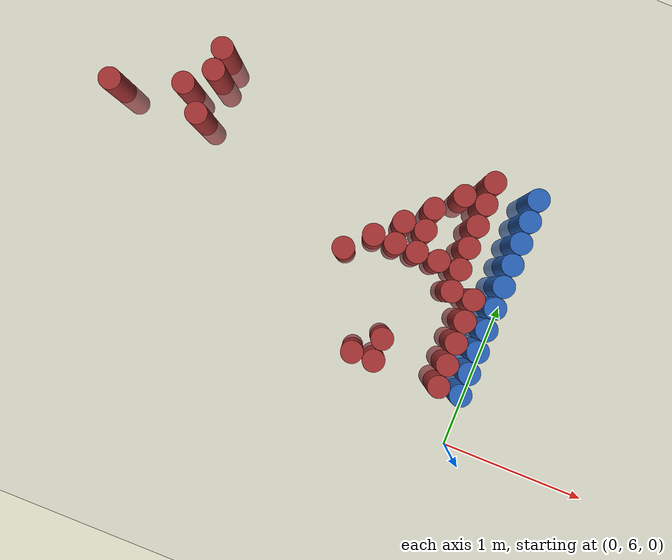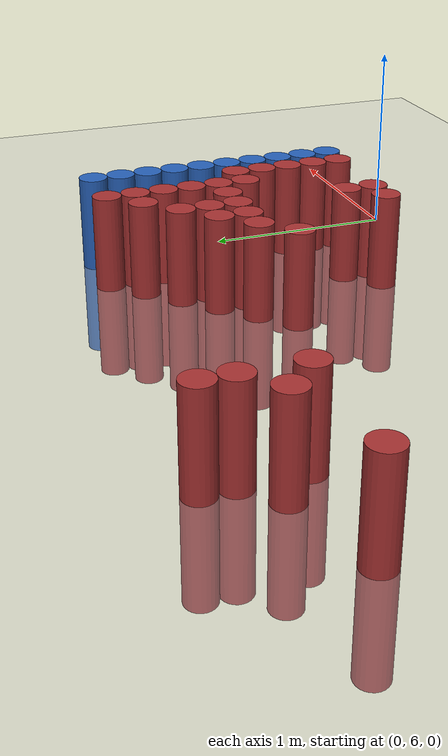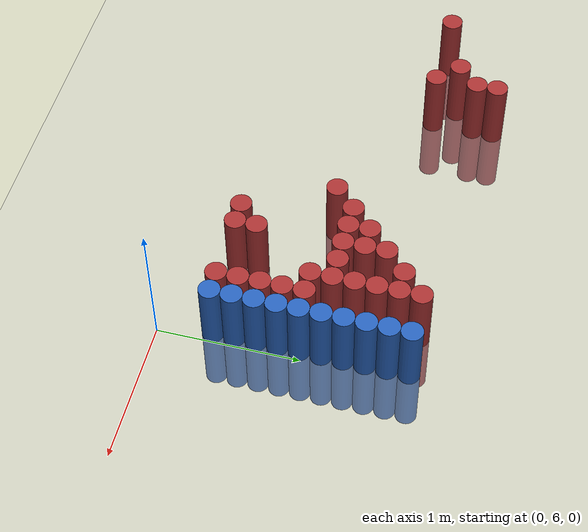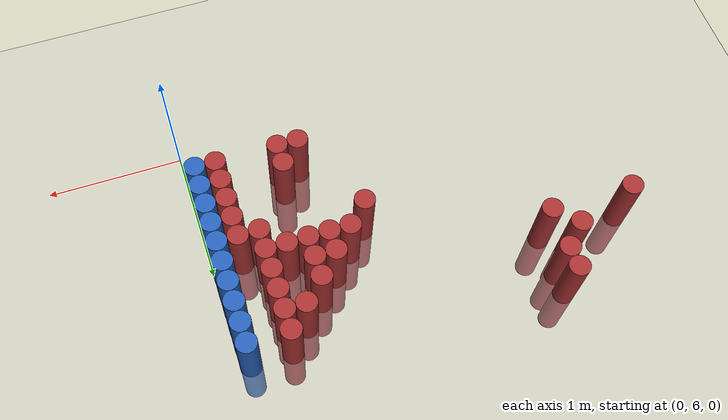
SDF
<sdf version="1.6">
 <world name="default">
  <model name="ground_plane">
   <static>1</static>
   <link name="link">
    <collision name="collision">
     <geometry><plane><normal>0 0 1</normal><size>100 100</size></plane></geometry>
     <surface><friction><ode><mu>100</mu><mu2>50</mu2></ode></friction></surface>
    </collision>
    <visual name="visual">
     <cast_shadows>0</cast_shadows>
     <geometry><plane><normal>0 0 1</normal><size>100 100</size></plane></geometry>
     <material>
      <script><uri>file://media/materials/scripts/gazebo.material</uri><name>Gazebo/Grey</name></script>
     </material>
    </visual>
   </link>
  </model>
  <model name="unit_cylinder_198">
   <static>1</static>
   <pose>-2.925000 7.425000 0.000000 0.000000 0.000000 0.000000</pose>
   <link name="link">
    <inertial>
     <mass>1</mass>
     <inertia><ixx>0.145833</ixx><ixy>0</ixy><ixz>0</ixz><iyy>0.145833</iyy><iyz>0</iyz><izz>0.125</izz></inertia>
    </inertial>
    <collision name="collision">
     <geometry><cylinder><radius>0.075000</radius><length>1</length></cylinder></geometry>
    </collision>
    <visual name="visual">
     <geometry><cylinder><radius>0.075000</radius><length>1</length></cylinder></geometry>
     <material>
      <ambient>0.648000 0.192000 0.192000 1</ambient>
      <diffuse>0.648000 0.192000 0.192000 1</diffuse>
     </material>
     <material>
      <script><name>Gazebo/Grey</name><uri>file://media/materials/scripts/gazebo.material</uri></script>
     </material>
    </visual>
    <sensor name="sensor_contact" type="contact"><contact><collision>collision</collision></contact></sensor>
   </link>
   <plugin filename="gz-sim-touchplugin-system" name="gz::sim::systems::TouchPlugin">
    <target>robot</target>
    <namespace>robot</namespace>
    <time>0.001</time>
    <enabled>true</enabled>
   </plugin>
  </model>
  <model name="unit_cylinder_220">
   <static>1</static>
   <pose>-2.475000 7.575000 0.000000 0.000000 0.000000 0.000000</pose>
   <link name="link">
    <inertial>
     <mass>1</mass>
     <inertia><ixx>0.145833</ixx><ixy>0</ixy><ixz>0</ixz><iyy>0.145833</iyy><iyz>0</iyz><izz>0.125</izz></inertia>
    </inertial>
    <collision name="collision">
     <geometry><cylinder><radius>0.075000</radius><length>1</length></cylinder></geometry>
    </collision>
    <visual name="visual">
     <geometry><cylinder><radius>0.075000</radius><length>1</length></cylinder></geometry>
     <material>
      <ambient>0.648000 0.192000 0.192000 1</ambient>
      <diffuse>0.648000 0.192000 0.192000 1</diffuse>
     </material>
     <material>
      <script><name>Gazebo/Grey</name><uri>file://media/materials/scripts/gazebo.material</uri></script>
     </material>
    </visual>
    <sensor name="sensor_contact" type="contact"><contact><collision>collision</collision></contact></sensor>
   </link>
   <plugin filename="gz-sim-touchplugin-system" name="gz::sim::systems::TouchPlugin">
    <target>robot</target>
    <namespace>robot</namespace>
    <time>0.001</time>
    <enabled>true</enabled>
   </plugin>
  </model>
  <model name="unit_cylinder_228">
   <static>1</static>
   <pose>-2.325000 7.425000 0.000000 0.000000 0.000000 0.000000</pose>
   <link name="link">
    <inertial>
     <mass>1</mass>
     <inertia><ixx>0.145833</ixx><ixy>0</ixy><ixz>0</ixz><iyy>0.145833</iyy><iyz>0</iyz><izz>0.125</izz></inertia>
    </inertial>
    <collision name="collision">
     <geometry><cylinder><radius>0.075000</radius><length>1</length></cylinder></geometry>
    </collision>
    <visual name="visual">
     <geometry><cylinder><radius>0.075000</radius><length>1</length></cylinder></geometry>
     <material>
      <ambient>0.648000 0.192000 0.192000 1</ambient>
      <diffuse>0.648000 0.192000 0.192000 1</diffuse>
     </material>
     <material>
      <script><name>Gazebo/Grey</name><uri>file://media/materials/scripts/gazebo.material</uri></script>
     </material>
    </visual>
    <sensor name="sensor_contact" type="contact"><contact><collision>collision</collision></contact></sensor>
   </link>
   <plugin filename="gz-sim-touchplugin-system" name="gz::sim::systems::TouchPlugin">
    <target>robot</target>
    <namespace>robot</namespace>
    <time>0.001</time>
    <enabled>true</enabled>
   </plugin>
  </model>
  <model name="unit_cylinder_229">
   <static>1</static>
   <pose>-2.325000 7.725000 0.000000 0.000000 0.000000 0.000000</pose>
   <link name="link">
    <inertial>
     <mass>1</mass>
     <inertia><ixx>0.145833</ixx><ixy>0</ixy><ixz>0</ixz><iyy>0.145833</iyy><iyz>0</iyz><izz>0.125</izz></inertia>
    </inertial>
    <collision name="collision">
     <geometry><cylinder><radius>0.075000</radius><length>1</length></cylinder></geometry>
    </collision>
    <visual name="visual">
     <geometry><cylinder><radius>0.075000</radius><length>1</length></cylinder></geometry>
     <material>
      <ambient>0.648000 0.192000 0.192000 1</ambient>
      <diffuse>0.648000 0.192000 0.192000 1</diffuse>
     </material>
     <material>
      <script><name>Gazebo/Grey</name><uri>file://media/materials/scripts/gazebo.material</uri></script>
     </material>
    </visual>
    <sensor name="sensor_contact" type="contact"><contact><collision>collision</collision></contact></sensor>
   </link>
   <plugin filename="gz-sim-touchplugin-system" name="gz::sim::systems::TouchPlugin">
    <target>robot</target>
    <namespace>robot</namespace>
    <time>0.001</time>
    <enabled>true</enabled>
   </plugin>
  </model>
  <model name="unit_cylinder_230">
   <static>1</static>
   <pose>-2.325000 7.875000 0.000000 0.000000 0.000000 0.000000</pose>
   <link name="link">
    <inertial>
     <mass>1</mass>
     <inertia><ixx>0.145833</ixx><ixy>0</ixy><ixz>0</ixz><iyy>0.145833</iyy><iyz>0</iyz><izz>0.125</izz></inertia>
    </inertial>
    <collision name="collision">
     <geometry><cylinder><radius>0.075000</radius><length>1</length></cylinder></geometry>
    </collision>
    <visual name="visual">
     <geometry><cylinder><radius>0.075000</radius><length>1</length></cylinder></geometry>
     <material>
      <ambient>0.648000 0.192000 0.192000 1</ambient>
      <diffuse>0.648000 0.192000 0.192000 1</diffuse>
     </material>
     <material>
      <script><name>Gazebo/Grey</name><uri>file://media/materials/scripts/gazebo.material</uri></script>
     </material>
    </visual>
    <sensor name="sensor_contact" type="contact"><contact><collision>collision</collision></contact></sensor>
   </link>
   <plugin filename="gz-sim-touchplugin-system" name="gz::sim::systems::TouchPlugin">
    <target>robot</target>
    <namespace>robot</namespace>
    <time>0.001</time>
    <enabled>true</enabled>
   </plugin>
  </model>
  <model name="unit_cylinder_263">
   <static>1</static>
   <pose>-1.125000 6.975000 0.000000 0.000000 0.000000 0.000000</pose>
   <link name="link">
    <inertial>
     <mass>1</mass>
     <inertia><ixx>0.145833</ixx><ixy>0</ixy><ixz>0</ixz><iyy>0.145833</iyy><iyz>0</iyz><izz>0.125</izz></inertia>
    </inertial>
    <collision name="collision">
     <geometry><cylinder><radius>0.075000</radius><length>1</length></cylinder></geometry>
    </collision>
    <visual name="visual">
     <geometry><cylinder><radius>0.075000</radius><length>1</length></cylinder></geometry>
     <material>
      <ambient>0.648000 0.192000 0.192000 1</ambient>
      <diffuse>0.648000 0.192000 0.192000 1</diffuse>
     </material>
     <material>
      <script><name>Gazebo/Grey</name><uri>file://media/materials/scripts/gazebo.material</uri></script>
     </material>
    </visual>
    <sensor name="sensor_contact" type="contact"><contact><collision>collision</collision></contact></sensor>
   </link>
   <plugin filename="gz-sim-touchplugin-system" name="gz::sim::systems::TouchPlugin">
    <target>robot</target>
    <namespace>robot</namespace>
    <time>0.001</time>
    <enabled>true</enabled>
   </plugin>
  </model>
  <model name="unit_cylinder_267">
   <static>1</static>
   <pose>-0.975000 7.125000 0.000000 0.000000 0.000000 0.000000</pose>
   <link name="link">
    <inertial>
     <mass>1</mass>
     <inertia><ixx>0.145833</ixx><ixy>0</ixy><ixz>0</ixz><iyy>0.145833</iyy><iyz>0</iyz><izz>0.125</izz></inertia>
    </inertial>
    <collision name="collision">
     <geometry><cylinder><radius>0.075000</radius><length>1</length></cylinder></geometry>
    </collision>
    <visual name="visual">
     <geometry><cylinder><radius>0.075000</radius><length>1</length></cylinder></geometry>
     <material>
      <ambient>0.648000 0.192000 0.192000 1</ambient>
      <diffuse>0.648000 0.192000 0.192000 1</diffuse>
     </material>
     <material>
      <script><name>Gazebo/Grey</name><uri>file://media/materials/scripts/gazebo.material</uri></script>
     </material>
    </visual>
    <sensor name="sensor_contact" type="contact"><contact><collision>collision</collision></contact></sensor>
   </link>
   <plugin filename="gz-sim-touchplugin-system" name="gz::sim::systems::TouchPlugin">
    <target>robot</target>
    <namespace>robot</namespace>
    <time>0.001</time>
    <enabled>true</enabled>
   </plugin>
  </model>
  <model name="unit_cylinder_270">
   <static>1</static>
   <pose>-0.825000 6.375000 0.000000 0.000000 0.000000 0.000000</pose>
   <link name="link">
    <inertial>
     <mass>1</mass>
     <inertia><ixx>0.145833</ixx><ixy>0</ixy><ixz>0</ixz><iyy>0.145833</iyy><iyz>0</iyz><izz>0.125</izz></inertia>
    </inertial>
    <collision name="collision">
     <geometry><cylinder><radius>0.075000</radius><length>1</length></cylinder></geometry>
    </collision>
    <visual name="visual">
     <geometry><cylinder><radius>0.075000</radius><length>1</length></cylinder></geometry>
     <material>
      <ambient>0.648000 0.192000 0.192000 1</ambient>
      <diffuse>0.648000 0.192000 0.192000 1</diffuse>
     </material>
     <material>
      <script><name>Gazebo/Grey</name><uri>file://media/materials/scripts/gazebo.material</uri></script>
     </material>
    </visual>
    <sensor name="sensor_contact" type="contact"><contact><collision>collision</collision></contact></sensor>
   </link>
   <plugin filename="gz-sim-touchplugin-system" name="gz::sim::systems::TouchPlugin">
    <target>robot</target>
    <namespace>robot</namespace>
    <time>0.001</time>
    <enabled>true</enabled>
   </plugin>
  </model>
  <model name="unit_cylinder_271">
   <static>1</static>
   <pose>-0.825000 7.125000 0.000000 0.000000 0.000000 0.000000</pose>
   <link name="link">
    <inertial>
     <mass>1</mass>
     <inertia><ixx>0.145833</ixx><ixy>0</ixy><ixz>0</ixz><iyy>0.145833</iyy><iyz>0</iyz><izz>0.125</izz></inertia>
    </inertial>
    <collision name="collision">
     <geometry><cylinder><radius>0.075000</radius><length>1</length></cylinder></geometry>
    </collision>
    <visual name="visual">
     <geometry><cylinder><radius>0.075000</radius><length>1</length></cylinder></geometry>
     <material>
      <ambient>0.648000 0.192000 0.192000 1</ambient>
      <diffuse>0.648000 0.192000 0.192000 1</diffuse>
     </material>
     <material>
      <script><name>Gazebo/Grey</name><uri>file://media/materials/scripts/gazebo.material</uri></script>
     </material>
    </visual>
    <sensor name="sensor_contact" type="contact"><contact><collision>collision</collision></contact></sensor>
   </link>
   <plugin filename="gz-sim-touchplugin-system" name="gz::sim::systems::TouchPlugin">
    <target>robot</target>
    <namespace>robot</namespace>
    <time>0.001</time>
    <enabled>true</enabled>
   </plugin>
  </model>
  <model name="unit_cylinder_272">
   <static>1</static>
   <pose>-0.825000 7.275000 0.000000 0.000000 0.000000 0.000000</pose>
   <link name="link">
    <inertial>
     <mass>1</mass>
     <inertia><ixx>0.145833</ixx><ixy>0</ixy><ixz>0</ixz><iyy>0.145833</iyy><iyz>0</iyz><izz>0.125</izz></inertia>
    </inertial>
    <collision name="collision">
     <geometry><cylinder><radius>0.075000</radius><length>1</length></cylinder></geometry>
    </collision>
    <visual name="visual">
     <geometry><cylinder><radius>0.075000</radius><length>1</length></cylinder></geometry>
     <material>
      <ambient>0.648000 0.192000 0.192000 1</ambient>
      <diffuse>0.648000 0.192000 0.192000 1</diffuse>
     </material>
     <material>
      <script><name>Gazebo/Grey</name><uri>file://media/materials/scripts/gazebo.material</uri></script>
     </material>
    </visual>
    <sensor name="sensor_contact" type="contact"><contact><collision>collision</collision></contact></sensor>
   </link>
   <plugin filename="gz-sim-touchplugin-system" name="gz::sim::systems::TouchPlugin">
    <target>robot</target>
    <namespace>robot</namespace>
    <time>0.001</time>
    <enabled>true</enabled>
   </plugin>
  </model>
  <model name="unit_cylinder_275">
   <static>1</static>
   <pose>-0.675000 6.375000 0.000000 0.000000 0.000000 0.000000</pose>
   <link name="link">
    <inertial>
     <mass>1</mass>
     <inertia><ixx>0.145833</ixx><ixy>0</ixy><ixz>0</ixz><iyy>0.145833</iyy><iyz>0</iyz><izz>0.125</izz></inertia>
    </inertial>
    <collision name="collision">
     <geometry><cylinder><radius>0.075000</radius><length>1</length></cylinder></geometry>
    </collision>
    <visual name="visual">
     <geometry><cylinder><radius>0.075000</radius><length>1</length></cylinder></geometry>
     <material>
      <ambient>0.648000 0.192000 0.192000 1</ambient>
      <diffuse>0.648000 0.192000 0.192000 1</diffuse>
     </material>
     <material>
      <script><name>Gazebo/Grey</name><uri>file://media/materials/scripts/gazebo.material</uri></script>
     </material>
    </visual>
    <sensor name="sensor_contact" type="contact"><contact><collision>collision</collision></contact></sensor>
   </link>
   <plugin filename="gz-sim-touchplugin-system" name="gz::sim::systems::TouchPlugin">
    <target>robot</target>
    <namespace>robot</namespace>
    <time>0.001</time>
    <enabled>true</enabled>
   </plugin>
  </model>
  <model name="unit_cylinder_276">
   <static>1</static>
   <pose>-0.675000 6.525000 0.000000 0.000000 0.000000 0.000000</pose>
   <link name="link">
    <inertial>
     <mass>1</mass>
     <inertia><ixx>0.145833</ixx><ixy>0</ixy><ixz>0</ixz><iyy>0.145833</iyy><iyz>0</iyz><izz>0.125</izz></inertia>
    </inertial>
    <collision name="collision">
     <geometry><cylinder><radius>0.075000</radius><length>1</length></cylinder></geometry>
    </collision>
    <visual name="visual">
     <geometry><cylinder><radius>0.075000</radius><length>1</length></cylinder></geometry>
     <material>
      <ambient>0.648000 0.192000 0.192000 1</ambient>
      <diffuse>0.648000 0.192000 0.192000 1</diffuse>
     </material>
     <material>
      <script><name>Gazebo/Grey</name><uri>file://media/materials/scripts/gazebo.material</uri></script>
     </material>
    </visual>
    <sensor name="sensor_contact" type="contact"><contact><collision>collision</collision></contact></sensor>
   </link>
   <plugin filename="gz-sim-touchplugin-system" name="gz::sim::systems::TouchPlugin">
    <target>robot</target>
    <namespace>robot</namespace>
    <time>0.001</time>
    <enabled>true</enabled>
   </plugin>
  </model>
  <model name="unit_cylinder_277">
   <static>1</static>
   <pose>-0.675000 7.125000 0.000000 0.000000 0.000000 0.000000</pose>
   <link name="link">
    <inertial>
     <mass>1</mass>
     <inertia><ixx>0.145833</ixx><ixy>0</ixy><ixz>0</ixz><iyy>0.145833</iyy><iyz>0</iyz><izz>0.125</izz></inertia>
    </inertial>
    <collision name="collision">
     <geometry><cylinder><radius>0.075000</radius><length>1</length></cylinder></geometry>
    </collision>
    <visual name="visual">
     <geometry><cylinder><radius>0.075000</radius><length>1</length></cylinder></geometry>
     <material>
      <ambient>0.648000 0.192000 0.192000 1</ambient>
      <diffuse>0.648000 0.192000 0.192000 1</diffuse>
     </material>
     <material>
      <script><name>Gazebo/Grey</name><uri>file://media/materials/scripts/gazebo.material</uri></script>
     </material>
    </visual>
    <sensor name="sensor_contact" type="contact"><contact><collision>collision</collision></contact></sensor>
   </link>
   <plugin filename="gz-sim-touchplugin-system" name="gz::sim::systems::TouchPlugin">
    <target>robot</target>
    <namespace>robot</namespace>
    <time>0.001</time>
    <enabled>true</enabled>
   </plugin>
  </model>
  <model name="unit_cylinder_278">
   <static>1</static>
   <pose>-0.675000 7.275000 0.000000 0.000000 0.000000 0.000000</pose>
   <link name="link">
    <inertial>
     <mass>1</mass>
     <inertia><ixx>0.145833</ixx><ixy>0</ixy><ixz>0</ixz><iyy>0.145833</iyy><iyz>0</iyz><izz>0.125</izz></inertia>
    </inertial>
    <collision name="collision">
     <geometry><cylinder><radius>0.075000</radius><length>1</length></cylinder></geometry>
    </collision>
    <visual name="visual">
     <geometry><cylinder><radius>0.075000</radius><length>1</length></cylinder></geometry>
     <material>
      <ambient>0.648000 0.192000 0.192000 1</ambient>
      <diffuse>0.648000 0.192000 0.192000 1</diffuse>
     </material>
     <material>
      <script><name>Gazebo/Grey</name><uri>file://media/materials/scripts/gazebo.material</uri></script>
     </material>
    </visual>
    <sensor name="sensor_contact" type="contact"><contact><collision>collision</collision></contact></sensor>
   </link>
   <plugin filename="gz-sim-touchplugin-system" name="gz::sim::systems::TouchPlugin">
    <target>robot</target>
    <namespace>robot</namespace>
    <time>0.001</time>
    <enabled>true</enabled>
   </plugin>
  </model>
  <model name="unit_cylinder_279">
   <static>1</static>
   <pose>-0.675000 7.425000 0.000000 0.000000 0.000000 0.000000</pose>
   <link name="link">
    <inertial>
     <mass>1</mass>
     <inertia><ixx>0.145833</ixx><ixy>0</ixy><ixz>0</ixz><iyy>0.145833</iyy><iyz>0</iyz><izz>0.125</izz></inertia>
    </inertial>
    <collision name="collision">
     <geometry><cylinder><radius>0.075000</radius><length>1</length></cylinder></geometry>
    </collision>
    <visual name="visual">
     <geometry><cylinder><radius>0.075000</radius><length>1</length></cylinder></geometry>
     <material>
      <ambient>0.648000 0.192000 0.192000 1</ambient>
      <diffuse>0.648000 0.192000 0.192000 1</diffuse>
     </material>
     <material>
      <script><name>Gazebo/Grey</name><uri>file://media/materials/scripts/gazebo.material</uri></script>
     </material>
    </visual>
    <sensor name="sensor_contact" type="contact"><contact><collision>collision</collision></contact></sensor>
   </link>
   <plugin filename="gz-sim-touchplugin-system" name="gz::sim::systems::TouchPlugin">
    <target>robot</target>
    <namespace>robot</namespace>
    <time>0.001</time>
    <enabled>true</enabled>
   </plugin>
  </model>
  <model name="unit_cylinder_281">
   <static>1</static>
   <pose>-0.525000 7.125000 0.000000 0.000000 0.000000 0.000000</pose>
   <link name="link">
    <inertial>
     <mass>1</mass>
     <inertia><ixx>0.145833</ixx><ixy>0</ixy><ixz>0</ixz><iyy>0.145833</iyy><iyz>0</iyz><izz>0.125</izz></inertia>
    </inertial>
    <collision name="collision">
     <geometry><cylinder><radius>0.075000</radius><length>1</length></cylinder></geometry>
    </collision>
    <visual name="visual">
     <geometry><cylinder><radius>0.075000</radius><length>1</length></cylinder></geometry>
     <material>
      <ambient>0.648000 0.192000 0.192000 1</ambient>
      <diffuse>0.648000 0.192000 0.192000 1</diffuse>
     </material>
     <material>
      <script><name>Gazebo/Grey</name><uri>file://media/materials/scripts/gazebo.material</uri></script>
     </material>
    </visual>
    <sensor name="sensor_contact" type="contact"><contact><collision>collision</collision></contact></sensor>
   </link>
   <plugin filename="gz-sim-touchplugin-system" name="gz::sim::systems::TouchPlugin">
    <target>robot</target>
    <namespace>robot</namespace>
    <time>0.001</time>
    <enabled>true</enabled>
   </plugin>
  </model>
  <model name="unit_cylinder_282">
   <static>1</static>
   <pose>-0.525000 7.575000 0.000000 0.000000 0.000000 0.000000</pose>
   <link name="link">
    <inertial>
     <mass>1</mass>
     <inertia><ixx>0.145833</ixx><ixy>0</ixy><ixz>0</ixz><iyy>0.145833</iyy><iyz>0</iyz><izz>0.125</izz></inertia>
    </inertial>
    <collision name="collision">
     <geometry><cylinder><radius>0.075000</radius><length>1</length></cylinder></geometry>
    </collision>
    <visual name="visual">
     <geometry><cylinder><radius>0.075000</radius><length>1</length></cylinder></geometry>
     <material>
      <ambient>0.648000 0.192000 0.192000 1</ambient>
      <diffuse>0.648000 0.192000 0.192000 1</diffuse>
     </material>
     <material>
      <script><name>Gazebo/Grey</name><uri>file://media/materials/scripts/gazebo.material</uri></script>
     </material>
    </visual>
    <sensor name="sensor_contact" type="contact"><contact><collision>collision</collision></contact></sensor>
   </link>
   <plugin filename="gz-sim-touchplugin-system" name="gz::sim::systems::TouchPlugin">
    <target>robot</target>
    <namespace>robot</namespace>
    <time>0.001</time>
    <enabled>true</enabled>
   </plugin>
  </model>
  <model name="unit_cylinder_283">
   <static>1</static>
   <pose>-0.375000 6.975000 0.000000 0.000000 0.000000 0.000000</pose>
   <link name="link">
    <inertial>
     <mass>1</mass>
     <inertia><ixx>0.145833</ixx><ixy>0</ixy><ixz>0</ixz><iyy>0.145833</iyy><iyz>0</iyz><izz>0.125</izz></inertia>
    </inertial>
    <collision name="collision">
     <geometry><cylinder><radius>0.075000</radius><length>1</length></cylinder></geometry>
    </collision>
    <visual name="visual">
     <geometry><cylinder><radius>0.075000</radius><length>1</length></cylinder></geometry>
     <material>
      <ambient>0.648000 0.192000 0.192000 1</ambient>
      <diffuse>0.648000 0.192000 0.192000 1</diffuse>
     </material>
     <material>
      <script><name>Gazebo/Grey</name><uri>file://media/materials/scripts/gazebo.material</uri></script>
     </material>
    </visual>
    <sensor name="sensor_contact" type="contact"><contact><collision>collision</collision></contact></sensor>
   </link>
   <plugin filename="gz-sim-touchplugin-system" name="gz::sim::systems::TouchPlugin">
    <target>robot</target>
    <namespace>robot</namespace>
    <time>0.001</time>
    <enabled>true</enabled>
   </plugin>
  </model>
  <model name="unit_cylinder_284">
   <static>1</static>
   <pose>-0.375000 7.125000 0.000000 0.000000 0.000000 0.000000</pose>
   <link name="link">
    <inertial>
     <mass>1</mass>
     <inertia><ixx>0.145833</ixx><ixy>0</ixy><ixz>0</ixz><iyy>0.145833</iyy><iyz>0</iyz><izz>0.125</izz></inertia>
    </inertial>
    <collision name="collision">
     <geometry><cylinder><radius>0.075000</radius><length>1</length></cylinder></geometry>
    </collision>
    <visual name="visual">
     <geometry><cylinder><radius>0.075000</radius><length>1</length></cylinder></geometry>
     <material>
      <ambient>0.648000 0.192000 0.192000 1</ambient>
      <diffuse>0.648000 0.192000 0.192000 1</diffuse>
     </material>
     <material>
      <script><name>Gazebo/Grey</name><uri>file://media/materials/scripts/gazebo.material</uri></script>
     </material>
    </visual>
    <sensor name="sensor_contact" type="contact"><contact><collision>collision</collision></contact></sensor>
   </link>
   <plugin filename="gz-sim-touchplugin-system" name="gz::sim::systems::TouchPlugin">
    <target>robot</target>
    <namespace>robot</namespace>
    <time>0.001</time>
    <enabled>true</enabled>
   </plugin>
  </model>
  <model name="unit_cylinder_285">
   <static>1</static>
   <pose>-0.375000 7.275000 0.000000 0.000000 0.000000 0.000000</pose>
   <link name="link">
    <inertial>
     <mass>1</mass>
     <inertia><ixx>0.145833</ixx><ixy>0</ixy><ixz>0</ixz><iyy>0.145833</iyy><iyz>0</iyz><izz>0.125</izz></inertia>
    </inertial>
    <collision name="collision">
     <geometry><cylinder><radius>0.075000</radius><length>1</length></cylinder></geometry>
    </collision>
    <visual name="visual">
     <geometry><cylinder><radius>0.075000</radius><length>1</length></cylinder></geometry>
     <material>
      <ambient>0.648000 0.192000 0.192000 1</ambient>
      <diffuse>0.648000 0.192000 0.192000 1</diffuse>
     </material>
     <material>
      <script><name>Gazebo/Grey</name><uri>file://media/materials/scripts/gazebo.material</uri></script>
     </material>
    </visual>
    <sensor name="sensor_contact" type="contact"><contact><collision>collision</collision></contact></sensor>
   </link>
   <plugin filename="gz-sim-touchplugin-system" name="gz::sim::systems::TouchPlugin">
    <target>robot</target>
    <namespace>robot</namespace>
    <time>0.001</time>
    <enabled>true</enabled>
   </plugin>
  </model>
  <model name="unit_cylinder_286">
   <static>1</static>
   <pose>-0.375000 7.425000 0.000000 0.000000 0.000000 0.000000</pose>
   <link name="link">
    <inertial>
     <mass>1</mass>
     <inertia><ixx>0.145833</ixx><ixy>0</ixy><ixz>0</ixz><iyy>0.145833</iyy><iyz>0</iyz><izz>0.125</izz></inertia>
    </inertial>
    <collision name="collision">
     <geometry><cylinder><radius>0.075000</radius><length>1</length></cylinder></geometry>
    </collision>
    <visual name="visual">
     <geometry><cylinder><radius>0.075000</radius><length>1</length></cylinder></geometry>
     <material>
      <ambient>0.648000 0.192000 0.192000 1</ambient>
      <diffuse>0.648000 0.192000 0.192000 1</diffuse>
     </material>
     <material>
      <script><name>Gazebo/Grey</name><uri>file://media/materials/scripts/gazebo.material</uri></script>
     </material>
    </visual>
    <sensor name="sensor_contact" type="contact"><contact><collision>collision</collision></contact></sensor>
   </link>
   <plugin filename="gz-sim-touchplugin-system" name="gz::sim::systems::TouchPlugin">
    <target>robot</target>
    <namespace>robot</namespace>
    <time>0.001</time>
    <enabled>true</enabled>
   </plugin>
  </model>
  <model name="unit_cylinder_287">
   <static>1</static>
   <pose>-0.375000 7.575000 0.000000 0.000000 0.000000 0.000000</pose>
   <link name="link">
    <inertial>
     <mass>1</mass>
     <inertia><ixx>0.145833</ixx><ixy>0</ixy><ixz>0</ixz><iyy>0.145833</iyy><iyz>0</iyz><izz>0.125</izz></inertia>
    </inertial>
    <collision name="collision">
     <geometry><cylinder><radius>0.075000</radius><length>1</length></cylinder></geometry>
    </collision>
    <visual name="visual">
     <geometry><cylinder><radius>0.075000</radius><length>1</length></cylinder></geometry>
     <material>
      <ambient>0.648000 0.192000 0.192000 1</ambient>
      <diffuse>0.648000 0.192000 0.192000 1</diffuse>
     </material>
     <material>
      <script><name>Gazebo/Grey</name><uri>file://media/materials/scripts/gazebo.material</uri></script>
     </material>
    </visual>
    <sensor name="sensor_contact" type="contact"><contact><collision>collision</collision></contact></sensor>
   </link>
   <plugin filename="gz-sim-touchplugin-system" name="gz::sim::systems::TouchPlugin">
    <target>robot</target>
    <namespace>robot</namespace>
    <time>0.001</time>
    <enabled>true</enabled>
   </plugin>
  </model>
  <model name="unit_cylinder_288">
   <static>1</static>
   <pose>-0.375000 7.725000 0.000000 0.000000 0.000000 0.000000</pose>
   <link name="link">
    <inertial>
     <mass>1</mass>
     <inertia><ixx>0.145833</ixx><ixy>0</ixy><ixz>0</ixz><iyy>0.145833</iyy><iyz>0</iyz><izz>0.125</izz></inertia>
    </inertial>
    <collision name="collision">
     <geometry><cylinder><radius>0.075000</radius><length>1</length></cylinder></geometry>
    </collision>
    <visual name="visual">
     <geometry><cylinder><radius>0.075000</radius><length>1</length></cylinder></geometry>
     <material>
      <ambient>0.648000 0.192000 0.192000 1</ambient>
      <diffuse>0.648000 0.192000 0.192000 1</diffuse>
     </material>
     <material>
      <script><name>Gazebo/Grey</name><uri>file://media/materials/scripts/gazebo.material</uri></script>
     </material>
    </visual>
    <sensor name="sensor_contact" type="contact"><contact><collision>collision</collision></contact></sensor>
   </link>
   <plugin filename="gz-sim-touchplugin-system" name="gz::sim::systems::TouchPlugin">
    <target>robot</target>
    <namespace>robot</namespace>
    <time>0.001</time>
    <enabled>true</enabled>
   </plugin>
  </model>
  <model name="unit_cylinder_298">
   <static>1</static>
   <pose>-0.225000 6.375000 0.000000 0.000000 0.000000 0.000000</pose>
   <link name="link">
    <inertial>
     <mass>1</mass>
     <inertia><ixx>0.145833</ixx><ixy>0</ixy><ixz>0</ixz><iyy>0.145833</iyy><iyz>0</iyz><izz>0.125</izz></inertia>
    </inertial>
    <collision name="collision">
     <geometry><cylinder><radius>0.075000</radius><length>1</length></cylinder></geometry>
    </collision>
    <visual name="visual">
     <geometry><cylinder><radius>0.075000</radius><length>1</length></cylinder></geometry>
     <material>
      <ambient>0.648000 0.192000 0.192000 1</ambient>
      <diffuse>0.648000 0.192000 0.192000 1</diffuse>
     </material>
     <material>
      <script><name>Gazebo/Grey</name><uri>file://media/materials/scripts/gazebo.material</uri></script>
     </material>
    </visual>
    <sensor name="sensor_contact" type="contact"><contact><collision>collision</collision></contact></sensor>
   </link>
   <plugin filename="gz-sim-touchplugin-system" name="gz::sim::systems::TouchPlugin">
    <target>robot</target>
    <namespace>robot</namespace>
    <time>0.001</time>
    <enabled>true</enabled>
   </plugin>
  </model>
  <model name="unit_cylinder_299">
   <static>1</static>
   <pose>-0.225000 6.525000 0.000000 0.000000 0.000000 0.000000</pose>
   <link name="link">
    <inertial>
     <mass>1</mass>
     <inertia><ixx>0.145833</ixx><ixy>0</ixy><ixz>0</ixz><iyy>0.145833</iyy><iyz>0</iyz><izz>0.125</izz></inertia>
    </inertial>
    <collision name="collision">
     <geometry><cylinder><radius>0.075000</radius><length>1</length></cylinder></geometry>
    </collision>
    <visual name="visual">
     <geometry><cylinder><radius>0.075000</radius><length>1</length></cylinder></geometry>
     <material>
      <ambient>0.648000 0.192000 0.192000 1</ambient>
      <diffuse>0.648000 0.192000 0.192000 1</diffuse>
     </material>
     <material>
      <script><name>Gazebo/Grey</name><uri>file://media/materials/scripts/gazebo.material</uri></script>
     </material>
    </visual>
    <sensor name="sensor_contact" type="contact"><contact><collision>collision</collision></contact></sensor>
   </link>
   <plugin filename="gz-sim-touchplugin-system" name="gz::sim::systems::TouchPlugin">
    <target>robot</target>
    <namespace>robot</namespace>
    <time>0.001</time>
    <enabled>true</enabled>
   </plugin>
  </model>
  <model name="unit_cylinder_300">
   <static>1</static>
   <pose>-0.225000 6.675000 0.000000 0.000000 0.000000 0.000000</pose>
   <link name="link">
    <inertial>
     <mass>1</mass>
     <inertia><ixx>0.145833</ixx><ixy>0</ixy><ixz>0</ixz><iyy>0.145833</iyy><iyz>0</iyz><izz>0.125</izz></inertia>
    </inertial>
    <collision name="collision">
     <geometry><cylinder><radius>0.075000</radius><length>1</length></cylinder></geometry>
    </collision>
    <visual name="visual">
     <geometry><cylinder><radius>0.075000</radius><length>1</length></cylinder></geometry>
     <material>
      <ambient>0.648000 0.192000 0.192000 1</ambient>
      <diffuse>0.648000 0.192000 0.192000 1</diffuse>
     </material>
     <material>
      <script><name>Gazebo/Grey</name><uri>file://media/materials/scripts/gazebo.material</uri></script>
     </material>
    </visual>
    <sensor name="sensor_contact" type="contact"><contact><collision>collision</collision></contact></sensor>
   </link>
   <plugin filename="gz-sim-touchplugin-system" name="gz::sim::systems::TouchPlugin">
    <target>robot</target>
    <namespace>robot</namespace>
    <time>0.001</time>
    <enabled>true</enabled>
   </plugin>
  </model>
  <model name="unit_cylinder_301">
   <static>1</static>
   <pose>-0.225000 6.825000 0.000000 0.000000 0.000000 0.000000</pose>
   <link name="link">
    <inertial>
     <mass>1</mass>
     <inertia><ixx>0.145833</ixx><ixy>0</ixy><ixz>0</ixz><iyy>0.145833</iyy><iyz>0</iyz><izz>0.125</izz></inertia>
    </inertial>
    <collision name="collision">
     <geometry><cylinder><radius>0.075000</radius><length>1</length></cylinder></geometry>
    </collision>
    <visual name="visual">
     <geometry><cylinder><radius>0.075000</radius><length>1</length></cylinder></geometry>
     <material>
      <ambient>0.648000 0.192000 0.192000 1</ambient>
      <diffuse>0.648000 0.192000 0.192000 1</diffuse>
     </material>
     <material>
      <script><name>Gazebo/Grey</name><uri>file://media/materials/scripts/gazebo.material</uri></script>
     </material>
    </visual>
    <sensor name="sensor_contact" type="contact"><contact><collision>collision</collision></contact></sensor>
   </link>
   <plugin filename="gz-sim-touchplugin-system" name="gz::sim::systems::TouchPlugin">
    <target>robot</target>
    <namespace>robot</namespace>
    <time>0.001</time>
    <enabled>true</enabled>
   </plugin>
  </model>
  <model name="unit_cylinder_302">
   <static>1</static>
   <pose>-0.225000 6.975000 0.000000 0.000000 0.000000 0.000000</pose>
   <link name="link">
    <inertial>
     <mass>1</mass>
     <inertia><ixx>0.145833</ixx><ixy>0</ixy><ixz>0</ixz><iyy>0.145833</iyy><iyz>0</iyz><izz>0.125</izz></inertia>
    </inertial>
    <collision name="collision">
     <geometry><cylinder><radius>0.075000</radius><length>1</length></cylinder></geometry>
    </collision>
    <visual name="visual">
     <geometry><cylinder><radius>0.075000</radius><length>1</length></cylinder></geometry>
     <material>
      <ambient>0.648000 0.192000 0.192000 1</ambient>
      <diffuse>0.648000 0.192000 0.192000 1</diffuse>
     </material>
     <material>
      <script><name>Gazebo/Grey</name><uri>file://media/materials/scripts/gazebo.material</uri></script>
     </material>
    </visual>
    <sensor name="sensor_contact" type="contact"><contact><collision>collision</collision></contact></sensor>
   </link>
   <plugin filename="gz-sim-touchplugin-system" name="gz::sim::systems::TouchPlugin">
    <target>robot</target>
    <namespace>robot</namespace>
    <time>0.001</time>
    <enabled>true</enabled>
   </plugin>
  </model>
  <model name="unit_cylinder_317">
   <static>1</static>
   <pose>-0.075000 6.375000 0.000000 0.000000 0.000000 0.000000</pose>
   <link name="link">
    <inertial>
     <mass>1</mass>
     <inertia><ixx>0.145833</ixx><ixy>0</ixy><ixz>0</ixz><iyy>0.145833</iyy><iyz>0</iyz><izz>0.125</izz></inertia>
    </inertial>
    <collision name="collision">
     <geometry><cylinder><radius>0.075000</radius><length>1</length></cylinder></geometry>
    </collision>
    <visual name="visual">
     <geometry><cylinder><radius>0.075000</radius><length>1</length></cylinder></geometry>
     <material>
      <ambient>0.152000 0.379000 0.720000 1</ambient>
      <diffuse>0.152000 0.379000 0.720000 1</diffuse>
     </material>
     <material>
      <script><name>Gazebo/Grey</name><uri>file://media/materials/scripts/gazebo.material</uri></script>
     </material>
    </visual>
    <sensor name="sensor_contact" type="contact"><contact><collision>collision</collision></contact></sensor>
   </link>
   <plugin filename="gz-sim-touchplugin-system" name="gz::sim::systems::TouchPlugin">
    <target>robot</target>
    <namespace>robot</namespace>
    <time>0.001</time>
    <enabled>true</enabled>
   </plugin>
  </model>
  <model name="unit_cylinder_318">
   <static>1</static>
   <pose>-0.075000 6.525000 0.000000 0.000000 0.000000 0.000000</pose>
   <link name="link">
    <inertial>
     <mass>1</mass>
     <inertia><ixx>0.145833</ixx><ixy>0</ixy><ixz>0</ixz><iyy>0.145833</iyy><iyz>0</iyz><izz>0.125</izz></inertia>
    </inertial>
    <collision name="collision">
     <geometry><cylinder><radius>0.075000</radius><length>1</length></cylinder></geometry>
    </collision>
    <visual name="visual">
     <geometry><cylinder><radius>0.075000</radius><length>1</length></cylinder></geometry>
     <material>
      <ambient>0.152000 0.379000 0.720000 1</ambient>
      <diffuse>0.152000 0.379000 0.720000 1</diffuse>
     </material>
     <material>
      <script><name>Gazebo/Grey</name><uri>file://media/materials/scripts/gazebo.material</uri></script>
     </material>
    </visual>
    <sensor name="sensor_contact" type="contact"><contact><collision>collision</collision></contact></sensor>
   </link>
   <plugin filename="gz-sim-touchplugin-system" name="gz::sim::systems::TouchPlugin">
    <target>robot</target>
    <namespace>robot</namespace>
    <time>0.001</time>
    <enabled>true</enabled>
   </plugin>
  </model>
  <model name="unit_cylinder_319">
   <static>1</static>
   <pose>-0.075000 6.675000 0.000000 0.000000 0.000000 0.000000</pose>
   <link name="link">
    <inertial>
     <mass>1</mass>
     <inertia><ixx>0.145833</ixx><ixy>0</ixy><ixz>0</ixz><iyy>0.145833</iyy><iyz>0</iyz><izz>0.125</izz></inertia>
    </inertial>
    <collision name="collision">
     <geometry><cylinder><radius>0.075000</radius><length>1</length></cylinder></geometry>
    </collision>
    <visual name="visual">
     <geometry><cylinder><radius>0.075000</radius><length>1</length></cylinder></geometry>
     <material>
      <ambient>0.152000 0.379000 0.720000 1</ambient>
      <diffuse>0.152000 0.379000 0.720000 1</diffuse>
     </material>
     <material>
      <script><name>Gazebo/Grey</name><uri>file://media/materials/scripts/gazebo.material</uri></script>
     </material>
    </visual>
    <sensor name="sensor_contact" type="contact"><contact><collision>collision</collision></contact></sensor>
   </link>
   <plugin filename="gz-sim-touchplugin-system" name="gz::sim::systems::TouchPlugin">
    <target>robot</target>
    <namespace>robot</namespace>
    <time>0.001</time>
    <enabled>true</enabled>
   </plugin>
  </model>
  <model name="unit_cylinder_320">
   <static>1</static>
   <pose>-0.075000 6.825000 0.000000 0.000000 0.000000 0.000000</pose>
   <link name="link">
    <inertial>
     <mass>1</mass>
     <inertia><ixx>0.145833</ixx><ixy>0</ixy><ixz>0</ixz><iyy>0.145833</iyy><iyz>0</iyz><izz>0.125</izz></inertia>
    </inertial>
    <collision name="collision">
     <geometry><cylinder><radius>0.075000</radius><length>1</length></cylinder></geometry>
    </collision>
    <visual name="visual">
     <geometry><cylinder><radius>0.075000</radius><length>1</length></cylinder></geometry>
     <material>
      <ambient>0.152000 0.379000 0.720000 1</ambient>
      <diffuse>0.152000 0.379000 0.720000 1</diffuse>
     </material>
     <material>
      <script><name>Gazebo/Grey</name><uri>file://media/materials/scripts/gazebo.material</uri></script>
     </material>
    </visual>
    <sensor name="sensor_contact" type="contact"><contact><collision>collision</collision></contact></sensor>
   </link>
   <plugin filename="gz-sim-touchplugin-system" name="gz::sim::systems::TouchPlugin">
    <target>robot</target>
    <namespace>robot</namespace>
    <time>0.001</time>
    <enabled>true</enabled>
   </plugin>
  </model>
  <model name="unit_cylinder_321">
   <static>1</static>
   <pose>-0.075000 6.975000 0.000000 0.000000 0.000000 0.000000</pose>
   <link name="link">
    <inertial>
     <mass>1</mass>
     <inertia><ixx>0.145833</ixx><ixy>0</ixy><ixz>0</ixz><iyy>0.145833</iyy><iyz>0</iyz><izz>0.125</izz></inertia>
    </inertial>
    <collision name="collision">
     <geometry><cylinder><radius>0.075000</radius><length>1</length></cylinder></geometry>
    </collision>
    <visual name="visual">
     <geometry><cylinder><radius>0.075000</radius><length>1</length></cylinder></geometry>
     <material>
      <ambient>0.152000 0.379000 0.720000 1</ambient>
      <diffuse>0.152000 0.379000 0.720000 1</diffuse>
     </material>
     <material>
      <script><name>Gazebo/Grey</name><uri>file://media/materials/scripts/gazebo.material</uri></script>
     </material>
    </visual>
    <sensor name="sensor_contact" type="contact"><contact><collision>collision</collision></contact></sensor>
   </link>
   <plugin filename="gz-sim-touchplugin-system" name="gz::sim::systems::TouchPlugin">
    <target>robot</target>
    <namespace>robot</namespace>
    <time>0.001</time>
    <enabled>true</enabled>
   </plugin>
  </model>
  <model name="unit_cylinder_322">
   <static>1</static>
   <pose>-0.075000 7.125000 0.000000 0.000000 0.000000 0.000000</pose>
   <link name="link">
    <inertial>
     <mass>1</mass>
     <inertia><ixx>0.145833</ixx><ixy>0</ixy><ixz>0</ixz><iyy>0.145833</iyy><iyz>0</iyz><izz>0.125</izz></inertia>
    </inertial>
    <collision name="collision">
     <geometry><cylinder><radius>0.075000</radius><length>1</length></cylinder></geometry>
    </collision>
    <visual name="visual">
     <geometry><cylinder><radius>0.075000</radius><length>1</length></cylinder></geometry>
     <material>
      <ambient>0.152000 0.379000 0.720000 1</ambient>
      <diffuse>0.152000 0.379000 0.720000 1</diffuse>
     </material>
     <material>
      <script><name>Gazebo/Grey</name><uri>file://media/materials/scripts/gazebo.material</uri></script>
     </material>
    </visual>
    <sensor name="sensor_contact" type="contact"><contact><collision>collision</collision></contact></sensor>
   </link>
   <plugin filename="gz-sim-touchplugin-system" name="gz::sim::systems::TouchPlugin">
    <target>robot</target>
    <namespace>robot</namespace>
    <time>0.001</time>
    <enabled>true</enabled>
   </plugin>
  </model>
  <model name="unit_cylinder_323">
   <static>1</static>
   <pose>-0.075000 7.275000 0.000000 0.000000 0.000000 0.000000</pose>
   <link name="link">
    <inertial>
     <mass>1</mass>
     <inertia><ixx>0.145833</ixx><ixy>0</ixy><ixz>0</ixz><iyy>0.145833</iyy><iyz>0</iyz><izz>0.125</izz></inertia>
    </inertial>
    <collision name="collision">
     <geometry><cylinder><radius>0.075000</radius><length>1</length></cylinder></geometry>
    </collision>
    <visual name="visual">
     <geometry><cylinder><radius>0.075000</radius><length>1</length></cylinder></geometry>
     <material>
      <ambient>0.152000 0.379000 0.720000 1</ambient>
      <diffuse>0.152000 0.379000 0.720000 1</diffuse>
     </material>
     <material>
      <script><name>Gazebo/Grey</name><uri>file://media/materials/scripts/gazebo.material</uri></script>
     </material>
    </visual>
    <sensor name="sensor_contact" type="contact"><contact><collision>collision</collision></contact></sensor>
   </link>
   <plugin filename="gz-sim-touchplugin-system" name="gz::sim::systems::TouchPlugin">
    <target>robot</target>
    <namespace>robot</namespace>
    <time>0.001</time>
    <enabled>true</enabled>
   </plugin>
  </model>
  <model name="unit_cylinder_324">
   <static>1</static>
   <pose>-0.075000 7.425000 0.000000 0.000000 0.000000 0.000000</pose>
   <link name="link">
    <inertial>
     <mass>1</mass>
     <inertia><ixx>0.145833</ixx><ixy>0</ixy><ixz>0</ixz><iyy>0.145833</iyy><iyz>0</iyz><izz>0.125</izz></inertia>
    </inertial>
    <collision name="collision">
     <geometry><cylinder><radius>0.075000</radius><length>1</length></cylinder></geometry>
    </collision>
    <visual name="visual">
     <geometry><cylinder><radius>0.075000</radius><length>1</length></cylinder></geometry>
     <material>
      <ambient>0.152000 0.379000 0.720000 1</ambient>
      <diffuse>0.152000 0.379000 0.720000 1</diffuse>
     </material>
     <material>
      <script><name>Gazebo/Grey</name><uri>file://media/materials/scripts/gazebo.material</uri></script>
     </material>
    </visual>
    <sensor name="sensor_contact" type="contact"><contact><collision>collision</collision></contact></sensor>
   </link>
   <plugin filename="gz-sim-touchplugin-system" name="gz::sim::systems::TouchPlugin">
    <target>robot</target>
    <namespace>robot</namespace>
    <time>0.001</time>
    <enabled>true</enabled>
   </plugin>
  </model>
  <model name="unit_cylinder_325">
   <static>1</static>
   <pose>-0.075000 7.575000 0.000000 0.000000 0.000000 0.000000</pose>
   <link name="link">
    <inertial>
     <mass>1</mass>
     <inertia><ixx>0.145833</ixx><ixy>0</ixy><ixz>0</ixz><iyy>0.145833</iyy><iyz>0</iyz><izz>0.125</izz></inertia>
    </inertial>
    <collision name="collision">
     <geometry><cylinder><radius>0.075000</radius><length>1</length></cylinder></geometry>
    </collision>
    <visual name="visual">
     <geometry><cylinder><radius>0.075000</radius><length>1</length></cylinder></geometry>
     <material>
      <ambient>0.152000 0.379000 0.720000 1</ambient>
      <diffuse>0.152000 0.379000 0.720000 1</diffuse>
     </material>
     <material>
      <script><name>Gazebo/Grey</name><uri>file://media/materials/scripts/gazebo.material</uri></script>
     </material>
    </visual>
    <sensor name="sensor_contact" type="contact"><contact><collision>collision</collision></contact></sensor>
   </link>
   <plugin filename="gz-sim-touchplugin-system" name="gz::sim::systems::TouchPlugin">
    <target>robot</target>
    <namespace>robot</namespace>
    <time>0.001</time>
    <enabled>true</enabled>
   </plugin>
  </model>
  <model name="unit_cylinder_326">
   <static>1</static>
   <pose>-0.075000 7.725000 0.000000 0.000000 0.000000 0.000000</pose>
   <link name="link">
    <inertial>
     <mass>1</mass>
     <inertia><ixx>0.145833</ixx><ixy>0</ixy><ixz>0</ixz><iyy>0.145833</iyy><iyz>0</iyz><izz>0.125</izz></inertia>
    </inertial>
    <collision name="collision">
     <geometry><cylinder><radius>0.075000</radius><length>1</length></cylinder></geometry>
    </collision>
    <visual name="visual">
     <geometry><cylinder><radius>0.075000</radius><length>1</length></cylinder></geometry>
     <material>
      <ambient>0.152000 0.379000 0.720000 1</ambient>
      <diffuse>0.152000 0.379000 0.720000 1</diffuse>
     </material>
     <material>
      <script><name>Gazebo/Grey</name><uri>file://media/materials/scripts/gazebo.material</uri></script>
     </material>
    </visual>
    <sensor name="sensor_contact" type="contact"><contact><collision>collision</collision></contact></sensor>
   </link>
   <plugin filename="gz-sim-touchplugin-system" name="gz::sim::systems::TouchPlugin">
    <target>robot</target>
    <namespace>robot</namespace>
    <time>0.001</time>
    <enabled>true</enabled>
   </plugin>
  </model>
 </world>
</sdf>
